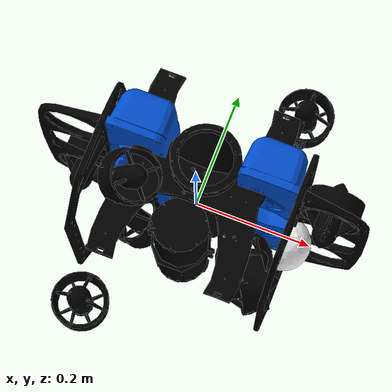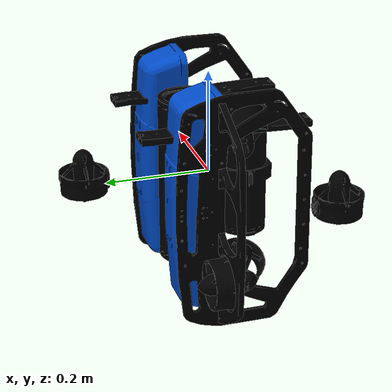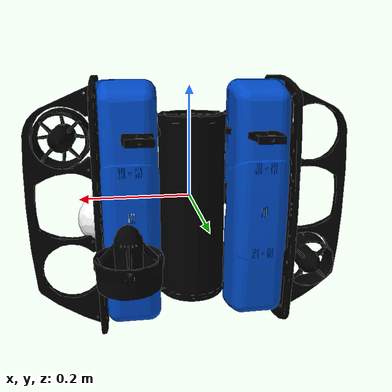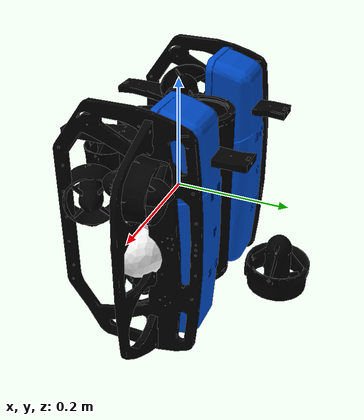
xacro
<?xml version="1.0" encoding="utf-8"?>
<robot name="bluerov2" xmlns:xacro="http://ros.org/wiki/xacro">

    <xacro:include filename="materials.xacro" />

    <link name="bluerov2_base">
      <visual>
        <origin
          xyz="0 0 0"
          rpy="0 0 0" />
        <geometry>
          <mesh
            filename="package://bluerov2_sim/data/bluerov2/stl/base.stl" scale="1.0 1.0 1.0"/>
        </geometry>
        <material name="black"/>
      </visual>
    </link>

    <link name="sideRUp">
      <visual>
        <origin
          xyz="0 0 0"
          rpy="0 0 0" />
        <geometry>
          <mesh
            filename="package://bluerov2_sim/data/bluerov2/stl/right_sideUP.stl" scale="1.0 1.0 1.0"/>
        </geometry>
        <material name="black"/>
      </visual>
    </link>

    <link name="sideLUp">
      <visual>
        <origin
          xyz="0 0 0"
          rpy="0 0 0" />
        <geometry>
          <mesh
            filename="package://bluerov2_sim/data/bluerov2/stl/left_sideUP.stl" scale="1.0 1.0 1.0"/>
        </geometry>
        <material name="black"/>
      </visual>
    </link>

    <link name="sideR">
      <visual>
        <origin
          xyz="0 0 0"
          rpy="0 0 0" />
        <geometry>
          <mesh
            filename="package://bluerov2_sim/data/bluerov2/stl/right_side.stl" scale="1.0 1.0 1.0"/>
        </geometry>
        <material name="black"/>
      </visual>
    </link>

    <link name="sideL">
      <visual>
        <origin
          xyz="0 0 0"
          rpy="0 0 0" />
        <geometry>
          <mesh
            filename="package://bluerov2_sim/data/bluerov2/stl/left_side.stl" scale="1.0 1.0 1.0"/>
        </geometry>
        <material name="black"/>
      </visual>
    </link>

    <link name="firstCylinder">
      <visual>
        <origin
          xyz="0 0 0"
          rpy="0 0 0" />
        <geometry>
          <mesh
            filename="package://bluerov2_sim/data/bluerov2/stl/first_cylinder.stl" scale="1.0 1.0 1.0"/>
        </geometry>
        <material name="black"/>
      </visual>
    </link>

    <link name="cameraDome">
      <visual>
        <origin
          xyz="0 0 0"
          rpy="0 0 0" />
        <geometry>
          <mesh
            filename="package://bluerov2_sim/data/bluerov2/stl/dome.stl" scale="1.0 1.0 1.0"/>
        </geometry>
        <material name="glass"/>
      </visual>
    </link>

    <link name="leftFoamEnclosure">
      <visual>
        <origin
          xyz="0 0 0"
          rpy="0 0 0" />
        <geometry>
          <mesh
            filename="package://bluerov2_sim/data/bluerov2/stl/left_foam.stl" scale="1.0 1.0 1.0"/>
        </geometry>
        <material name="blue"/>
      </visual>
    </link>

    <link name="rightFoamEnclosure">
      <visual>
        <origin
          xyz="0 0 0"
          rpy="0 0 0" />
        <geometry>
          <mesh
            filename="package://bluerov2_sim/data/bluerov2/stl/right_foam.stl" scale="1.0 1.0 1.0"/>
        </geometry>
        <material name="blue"/>
      </visual>
    </link>

    <link name="secondCylinder">
      <visual>
        <origin
          xyz="0 0 0"
          rpy="0 0 0" />
        <geometry>
          <mesh
            filename="package://bluerov2_sim/data/bluerov2/stl/second_cylinder.stl" scale="1.0 1.0 1.0"/>
        </geometry>
        <material name="black"/>
      </visual>
    </link>

    <link name="ductLeftFront">
      <visual>
        <origin
          xyz="0 0 0"
          rpy="0 0 0" />
        <geometry>
          <mesh
            filename="package://bluerov2_sim/data/bluerov2/stl/duct_left_front.stl" scale="1.0 1.0 1.0"/>
        </geometry>
        <material name="black"/>
      </visual>
    </link>
    <link name="ductRightFront">
      <visual>
        <origin
          xyz="0 0 0"
          rpy="0 0 0" />
        <geometry>
          <mesh
            filename="package://bluerov2_sim/data/bluerov2/stl/duct_right_front.stl" scale="1.0 1.0 1.0"/>
        </geometry>
        <material name="black"/>
      </visual>
    </link>
    <link name="ductLeftUpFront">
      <visual>
        <origin
          xyz="0 0 0"
          rpy="0 0 0" />
        <geometry>
          <mesh
            filename="package://bluerov2_sim/data/bluerov2/stl/duct_left_up_front.stl" scale="1.0 1.0 1.0"/>
        </geometry>
        <material name="black"/>
      </visual>
    </link>
    <link name="ductRightUpFront">
      <visual>
        <origin
          xyz="0 0 0"
          rpy="0 0 0" />
        <geometry>
          <mesh
            filename="package://bluerov2_sim/data/bluerov2/stl/duct_right_up_front.stl" scale="1.0 1.0 1.0"/>
        </geometry>
        <material name="black"/>
      </visual>
    </link>
    <link name="ductLeftRear">
      <visual>
        <origin
          xyz="0 0 0"
          rpy="0 0 0" />
        <geometry>
          <mesh
            filename="package://bluerov2_sim/data/bluerov2/stl/duct_left_rear.stl" scale="1.0 1.0 1.0"/>
        </geometry>
        <material name="black"/>
      </visual>
    </link>
    <link name="ductRightRear">
      <visual>
        <origin
          xyz="0 0 0"
          rpy="0 0 0" />
        <geometry>
          <mesh
            filename="package://bluerov2_sim/data/bluerov2/stl/duct_right_rear.stl" scale="1.0 1.0 1.0"/>
        </geometry>
        <material name="black"/>
      </visual>
    </link>
    <link name="ductLeftUpRear">
      <visual>
        <origin
          xyz="0 0 0"
          rpy="0 0 0" />
        <geometry>
          <mesh
            filename="package://bluerov2_sim/data/bluerov2/stl/duct_left_up_rear.stl" scale="1.0 1.0 1.0"/>
        </geometry>
        <material name="black"/>
      </visual>
    </link>
    <link name="ductRightUpRear">
      <visual>
        <origin
          xyz="0 0 0"
          rpy="0 0 0" />
        <geometry>
          <mesh
            filename="package://bluerov2_sim/data/bluerov2/stl/duct_right_up_rear.stl" scale="1.0 1.0 1.0"/>
        </geometry>
        <material name="black"/>
      </visual>
    </link>

    <joint name="base_sideRUp" type="fixed">
      <origin rpy="0 0 0" xyz="0 0 0"/>
      <parent link="bluerov2_base" />
      <child link="sideRUp" />
    </joint>

    <joint name="base_sideLUp" type="fixed">
      <origin rpy="0 0 0" xyz="0 0 0"/>
      <parent link="bluerov2_base" />
      <child link="sideLUp" />
    </joint>

    <joint name="base_sideR" type="fixed">
      <origin rpy="0 0 0" xyz="0 0 0"/>
      <parent link="bluerov2_base" />
      <child link="sideR" />
    </joint>

    <joint name="base_sideL" type="fixed">
      <origin rpy="0 0 0" xyz="0 0 0"/>
      <parent link="bluerov2_base" />
      <child link="sideL" />
    </joint>

    <joint name="base_firstCylinder" type="fixed">
      <origin rpy="0 0 0" xyz="0 0 0"/>
      <parent link="bluerov2_base" />
      <child link="firstCylinder" />
    </joint>

    <joint name="base_cameraDome" type="fixed">
      <origin rpy="0 0 0" xyz="0 0 0"/>
      <parent link="bluerov2_base" />
      <child link="cameraDome" />
    </joint>

    <joint name="base_rightFoamEnclosure" type="fixed">
      <origin rpy="0 0 0" xyz="0 0 0"/>
      <parent link="bluerov2_base" />
      <child link="rightFoamEnclosure" />
    </joint>

    <joint name="base_leftFoamEnclosure" type="fixed">
      <origin rpy="0 0 0" xyz="0 0 0"/>
      <parent link="bluerov2_base" />
      <child link="leftFoamEnclosure" />
    </joint>

    <joint name="base_secondCylinder" type="fixed">
      <origin rpy="0 0 0" xyz="0 0 0"/>
      <parent link="bluerov2_base" />
      <child link="secondCylinder" />
    </joint>

    <link name="base"/>
    <joint name="bluerov2_base_base" type="fixed">
      <origin rpy="1.57 -1.57 0" xyz="0 0 0"/>
      <parent link="bluerov2_base" />
      <child link="base" />
    </joint>

    <joint name="base_ductLeftFront" type="fixed">
      <origin rpy="0 0 0" xyz="0 0 0"/>
      <parent link="bluerov2_base" />
      <child link="ductLeftFront" />
    </joint>
    <joint name="base_ductLeftRear" type="fixed">
      <origin rpy="0 0 0" xyz="0 0 0"/>
      <parent link="bluerov2_base" />
      <child link="ductLeftRear" />
    </joint>
    <joint name="base_ductLeftUpFront" type="fixed">
      <origin rpy="0 0 0" xyz="0 0 0"/>
      <parent link="bluerov2_base" />
      <child link="ductLeftUpFront" />
    </joint>
    <joint name="base_ductLeftUpRear" type="fixed">
      <origin rpy="0 0 0" xyz="0 0 0"/>
      <parent link="bluerov2_base" />
      <child link="ductLeftUpRear" />
    </joint>
    <joint name="base_ductRightUpFront" type="fixed">
      <origin rpy="0 0 0" xyz="0 0 0"/>
      <parent link="bluerov2_base" />
      <child link="ductRightUpFront" />
    </joint>
    <joint name="base_ductRightUpRear" type="fixed">
      <origin rpy="0 0 0" xyz="0 0 0"/>
      <parent link="bluerov2_base" />
      <child link="ductRightUpRear" />
    </joint>
    <joint name="base_ductRightFront" type="fixed">
      <origin rpy="0 0 0" xyz="0 0 0"/>
      <parent link="bluerov2_base" />
      <child link="ductRightFront" />
    </joint>
    <joint name="base_ductRightRear" type="fixed">
      <origin rpy="0 0 0" xyz="0 0 0"/>
      <parent link="bluerov2_base" />
      <child link="ductRightRear" />
    </joint>

</robot>

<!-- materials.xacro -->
<robot xmlns:xacro="http://ros.org/wiki/xacro">
    <material name="blue">
        <color rgba="0 0.3 0.8 1"/>
    </material>

    <material name="black">
        <color rgba="0 0 0 1"/>
    </material>

    <material name="blue_propeller">
        <color rgba="0 0.1 0.85 1"/>
    </material>

    <material name="glass">
        <color rgba="1.0 1.0 1.0 1"/>
    </material>
</robot>
